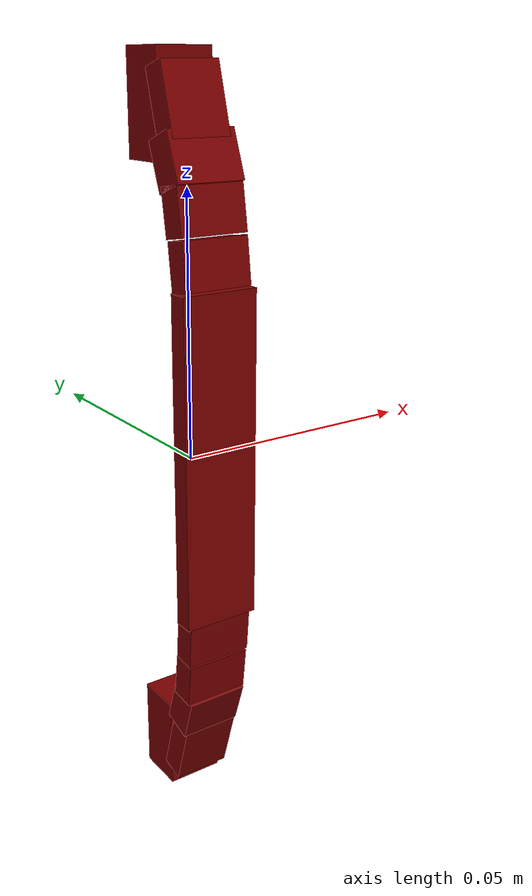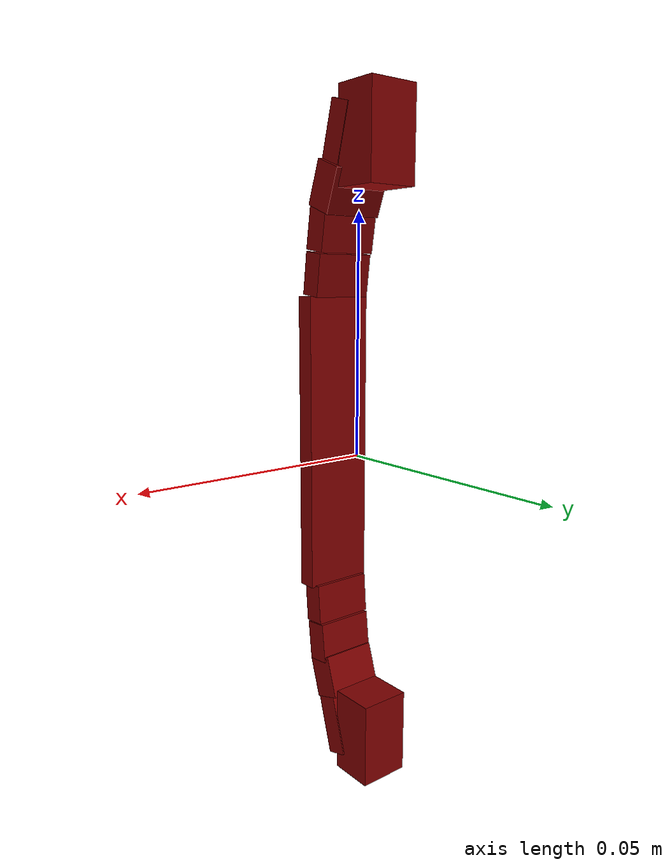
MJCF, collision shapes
<?xml version='1.0' encoding='UTF-8'?>
<mujoco model="model">
  <option timestep="0.002" gravity="0.0 0.0 -9.81"/>
  <compiler angle="radian"/>
  <asset>
    <mesh file="visuals/CabinetHandle017.obj" name="CabinetHandle017_vis"/>
    <texture file="visuals/T_BC001.png" name="tex" type="2d"/>
    <material name="mat" rgba="1 1 1 1.0" texture="tex" shininess="0.5" specular="0.3103448502657381"/>
  </asset>
  <default>
    <default class="visual">
      <geom conaffinity="0" contype="0" group="1" type="mesh"/>
    </default>
    <default class="collision">
      <geom group="0" rgba="0.5 0 0 0.5" density="1.0" solref="0.004 1" solimp="0.998 0.998 0.001"/>
    </default>
    <default class="spawn">
      <geom group="0" rgba="1 1 1 0.5" contype="0" conaffinity="0"/>
      <site group="0" rgba="1 1 1 0.5"/>
    </default>
    <default class="region">
      <geom group="1" conaffinity="0" contype="0" rgba="0 1 0 0" mass="0"/>
    </default>
  </default>
  <worldbody>
    <body>
      <body name="object">
        <geom mesh="CabinetHandle017_vis" type="mesh" solimp="0.998 0.998 0.001" solref="0.001 1" friction="0.95 0.3 0.1" class="visual" material="mat"/>
        <geom type="box" pos="-0.00000001 0.00514752 0.06351067" size="0.005572110414505005 0.004846051335334778 0.009338641539216042" quat="1.0 0.0 0.0 0.0" class="collision"/>
        <geom type="box" pos="-0.00000001 -0.00085181 0.06374758" size="0.0025142731610685587 0.005719291046261787 0.006568071898072958" quat="0.70014888048172 -0.09895194321870804 0.09895196557044983 0.7001489400863647" class="collision"/>
        <geom type="box" pos="0.00012535 -0.00815748 0.00166788" size="0.007505495101213455 0.0019837121944874525 0.03169005364179611" quat="1.0 0.0 0.0 0.0" class="collision"/>
        <geom type="box" pos="0.00012535 -0.00685784 0.03775205" size="0.0023084329441189766 0.006647542119026184 0.004348083399236202" quat="0.7055690884590149 -0.0466068871319294 0.04660686478018761 0.7055692076683044" class="collision"/>
        <geom type="box" pos="0.00012535 -0.00535459 0.04668548" size="0.0025107450783252716 0.006647542119026184 0.004363759886473417" quat="0.7047508955001831 -0.057673364877700806 0.05767336115241051 0.7047508358955383" class="collision"/>
        <geom type="box" pos="0.00012535 -0.00309132 0.05455793" size="0.0031621563248336315 0.006647542119026184 0.004581721033900976" quat="0.6953884363174438 -0.12819841504096985 0.12819841504096985 0.6953885555267334" class="collision"/>
        <geom type="box" pos="0.00000001 -0.00715964 -0.03415134" size="0.0023084329441189766 0.006647542119026184 0.004348083399236202" quat="0.028458960354328156 -0.7065338492393494 -0.7065338492393494 -0.028458744287490845" class="collision"/>
        <geom type="box" pos="0.00000001 -0.00611739 -0.04315022" size="0.002510744845494628 0.006448368076235056 0.004363759886473417" quat="0.03954268991947174 -0.7060002684593201 -0.7060002684593201 -0.039542462676763535" class="collision"/>
        <geom type="box" pos="0.00000001 -0.00426161 -0.05112856" size="0.003162156092002988 0.0061129131354391575 0.004581721965223551" quat="0.11028508096933365 -0.698453426361084 -0.6984534859657288 -0.11028478294610977" class="collision"/>
        <geom type="box" pos="0.00012536 -0.00154527 -0.06196109" size="0.0025142731610685587 0.005719291046261787 0.0065680742263793945" quat="0.10309186577796936 -0.6995512843132019 -0.6995514631271362 -0.1030915230512619" class="collision"/>
        <geom type="box" pos="0.00000001 0.00508681 -0.06219826" size="0.005572112742811441 0.0048460522666573524 0.00933864340186119" quat="1.0 0.0 0.0 0.0" class="collision"/>
        <geom class="region" name="reg_main" type="box" pos="0.0 0.0 -1.4999999999043556e-08" size="0.00836901 0.010955119999999999 0.073281715"/>
      </body>
    </body>
  </worldbody>
  <actuator/>
</mujoco>
